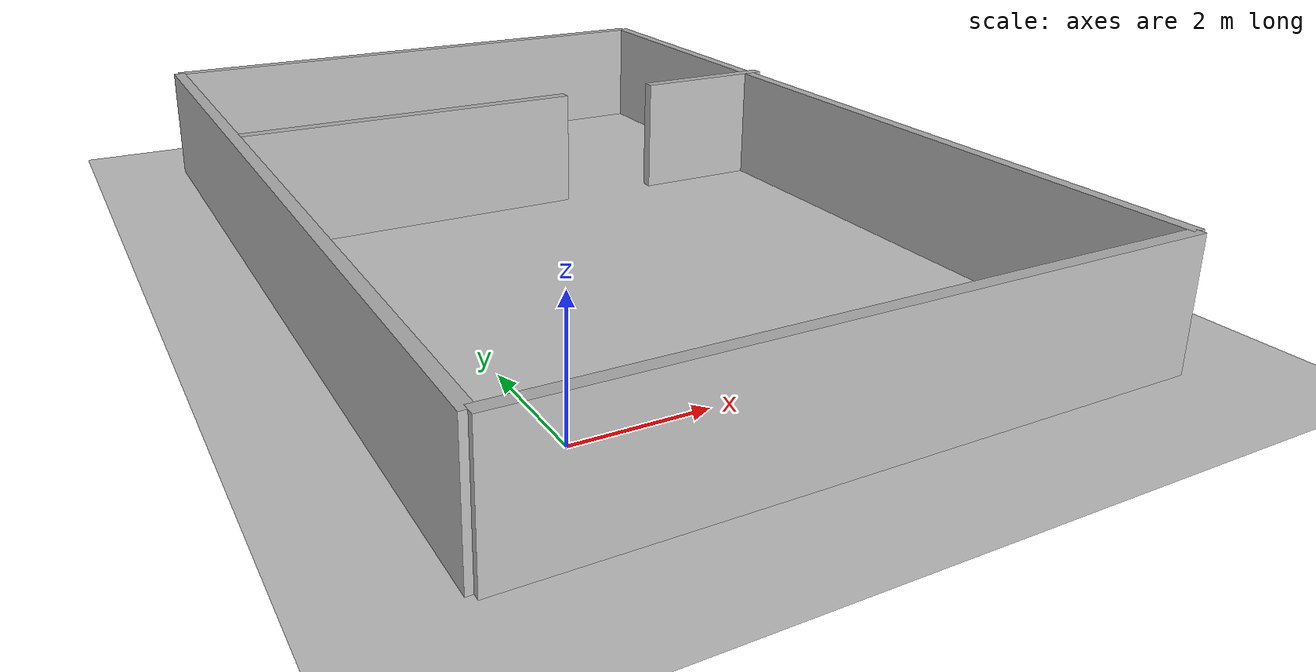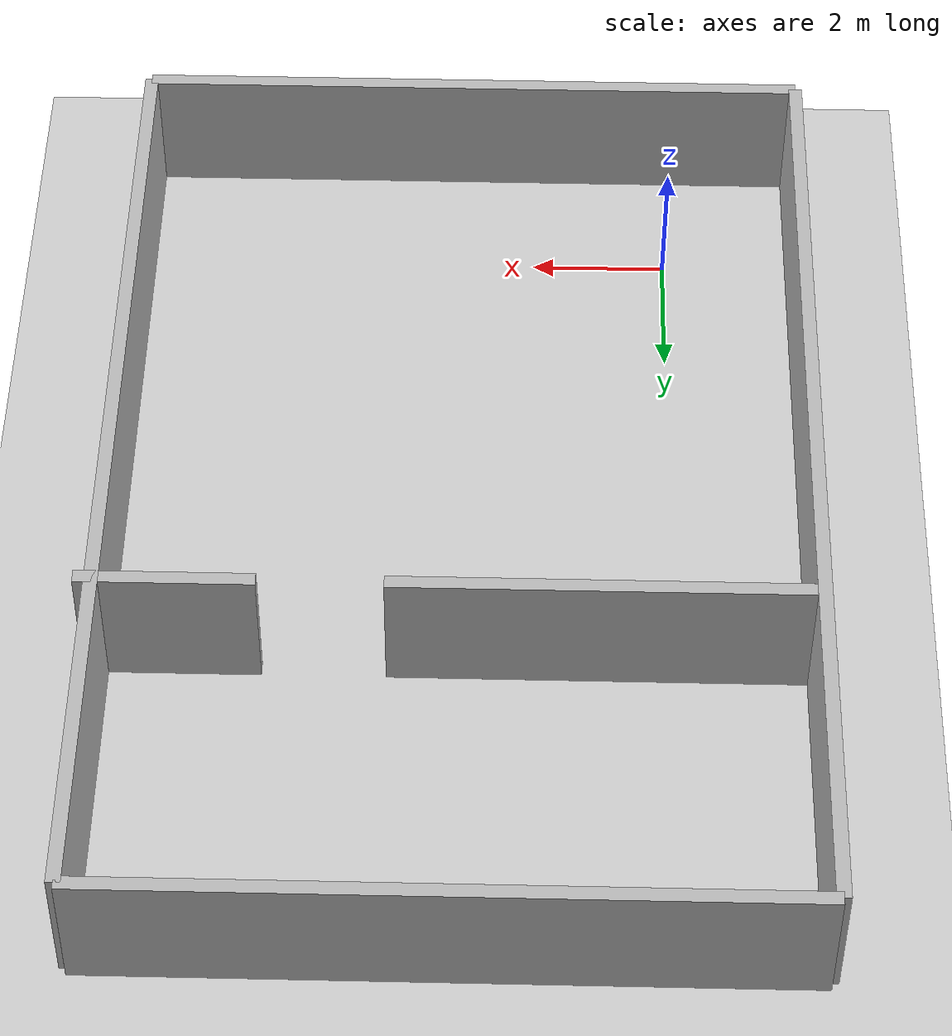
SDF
<sdf version="1.6">
 <world name="default">
  <light name="sun" type="directional">
   <pose>0 0 10 0 -0 0</pose>
   <diffuse>0.8 0.8 0.8 1</diffuse>
   <specular>0.2 0.2 0.2 1</specular>
   <attenuation>
    <range>1000</range>
    <constant>0.9</constant>
    <linear>0.01</linear>
    <quadratic>0.001</quadratic>
   </attenuation>
   <direction>-0.5 0.1 -0.9</direction>
  </light>
  <model name="ground_plane">
   <static>1</static>
   <link name="link">
    <collision name="collision">
     <geometry><plane><normal>0 0 1</normal><size>100 100</size></plane></geometry>
     <surface><friction><ode><mu>100</mu><mu2>50</mu2></ode></friction></surface>
    </collision>
    <visual name="visual">
     <cast_shadows>0</cast_shadows>
     <geometry><plane><normal>0 0 1</normal><size>100 100</size></plane></geometry>
     <material>
      <script><uri>file://media/materials/scripts/gazebo.material</uri><name>Gazebo/Grey</name></script>
     </material>
    </visual>
   </link>
  </model>
  <gravity>0 0 -9.8</gravity>
  <magnetic_field>6e-06 2.3e-05 -4.2e-05</magnetic_field>
  <atmosphere type="adiabatic"/>
  <physics name="default_physics" default="0" type="ode">
   <max_step_size>0.001</max_step_size>
   <real_time_factor>1</real_time_factor>
   <real_time_update_rate>1000</real_time_update_rate>
  </physics>
  <scene><ambient>0.4 0.4 0.4 1</ambient><background>0.7 0.7 0.7 1</background><shadows>1</shadows></scene>
  <audio><device>default</device></audio>
  <spherical_coordinates>
   <surface_model>EARTH_WGS84</surface_model>
   <latitude_deg>0</latitude_deg>
   <longitude_deg>0</longitude_deg>
   <elevation>0</elevation>
   <heading_deg>0</heading_deg>
  </spherical_coordinates>
  <model name="wall_1_model">
   <pose>3 -2 1 0 0 0</pose>
   <static>true</static>
   <link name="wall_1_body">
    <inertial>
     <mass>1.0</mass>
     <inertia><ixx>1.0</ixx><ixy>0.0</ixy><ixz>0.0</ixz><iyy>1.0</iyy><iyz>0.0</iyz><izz>1.0</izz></inertia>
    </inertial>
    <collision name="collision"><geometry><box><size>10 0.2 2</size></box></geometry></collision>
    <visual name="visual"><geometry><box><size>10 0.2 2</size></box></geometry></visual>
   </link>
  </model>
  <model name="wall_2_model">
   <pose>3 13 1 0 0 0</pose>
   <static>true</static>
   <link name="wall_2_body">
    <inertial>
     <mass>1.0</mass>
     <inertia><ixx>1.0</ixx><ixy>0.0</ixy><ixz>0.0</ixz><iyy>1.0</iyy><iyz>0.0</iyz><izz>1.0</izz></inertia>
    </inertial>
    <collision name="collision"><geometry><box><size>10 0.2 2</size></box></geometry></collision>
    <visual name="visual"><geometry><box><size>10 0.2 2</size></box></geometry></visual>
   </link>
  </model>
  <model name="wall_3_model">
   <pose>-2 5.5 1 0 0 0</pose>
   <static>true</static>
   <link name="wall_3_body">
    <inertial>
     <mass>1.0</mass>
     <inertia><ixx>1.0</ixx><ixy>0.0</ixy><ixz>0.0</ixz><iyy>1.0</iyy><iyz>0.0</iyz><izz>1.0</izz></inertia>
    </inertial>
    <collision name="collision"><geometry><box><size>0.2 15 2</size></box></geometry></collision>
    <visual name="visual"><geometry><box><size>0.2 15 2</size></box></geometry></visual>
   </link>
  </model>
  <model name="wall_4_model">
   <pose>8 5.5 1 0 0 0</pose>
   <static>true</static>
   <link name="wall_4_body">
    <inertial>
     <mass>1.0</mass>
     <inertia><ixx>1.0</ixx><ixy>0.0</ixy><ixz>0.0</ixz><iyy>1.0</iyy><iyz>0.0</iyz><izz>1.0</izz></inertia>
    </inertial>
    <collision name="collision"><geometry><box><size>0.2 15 2</size></box></geometry></collision>
    <visual name="visual"><geometry><box><size>0.2 15 2</size></box></geometry></visual>
   </link>
  </model>
  <model name="wall_5_model">
   <pose>1 8 1 0 0 0</pose>
   <static>true</static>
   <link name="wall_5_body">
    <inertial>
     <mass>1.0</mass>
     <inertia><ixx>1.0</ixx><ixy>0.0</ixy><ixz>0.0</ixz><iyy>1.0</iyy><iyz>0.0</iyz><izz>1.0</izz></inertia>
    </inertial>
    <collision name="collision"><geometry><box><size>6 0.2 2</size></box></geometry></collision>
    <visual name="visual"><geometry><box><size>6 0.2 2</size></box></geometry></visual>
   </link>
  </model>
  <model name="wall_6_model">
   <pose>7 8 1 0 0 0</pose>
   <static>true</static>
   <link name="wall_6_body">
    <inertial>
     <mass>1.0</mass>
     <inertia><ixx>1.0</ixx><ixy>0.0</ixy><ixz>0.0</ixz><iyy>1.0</iyy><iyz>0.0</iyz><izz>1.0</izz></inertia>
    </inertial>
    <collision name="collision"><geometry><box><size>2.5 0.2 2</size></box></geometry></collision>
    <visual name="visual"><geometry><box><size>2.5 0.2 2</size></box></geometry></visual>
   </link>
  </model>
 </world>
</sdf>
